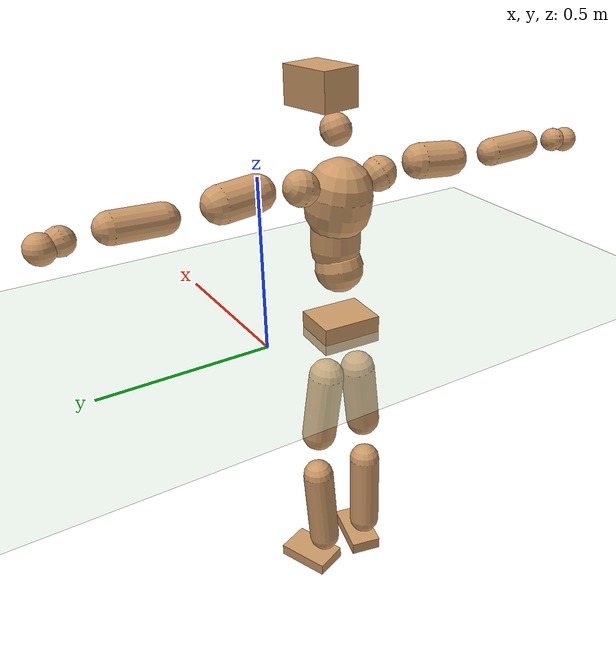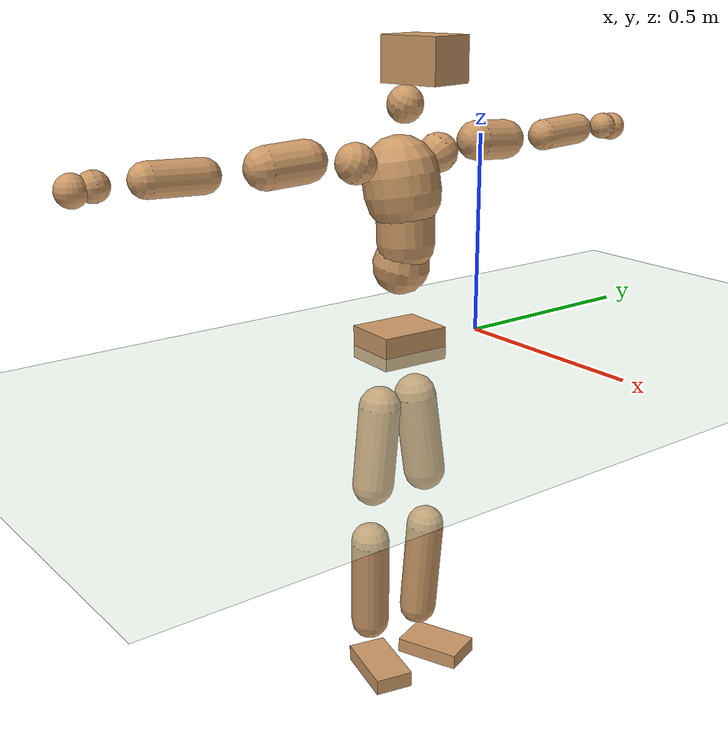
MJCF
<mujoco model="humanoid">
  <compiler coordinate="local" angle="radian"/>
  <default>
    <joint damping="0.0" armature="0.01" stiffness="0.0" limited="true"/>
    <geom conaffinity="1" condim="3" contype="7" margin="0.001" rgba="0.8 0.6 .4 1"/>
  </default>
  <asset>
    <texture type="skybox" builtin="gradient" rgb1=".4 .5 .6" rgb2="0 0 0" width="100" height="100"/>
    <texture builtin="flat" height="1278" mark="cross" markrgb="1 1 1" name="texgeom" random="0.01" rgb1="0.8 0.6 0.4" rgb2="0.8 0.6 0.4" type="cube" width="127"/>
    <texture builtin="checker" height="100" name="texplane" rgb1="0 0 0" rgb2="0.8 0.8 0.8" type="2d" width="100"/>
    <material name="MatPlane" reflectance="0.5" shininess="1" specular="1" texrepeat="60 60" texture="texplane"/>
    <material name="geom" texture="texgeom" texuniform="true"/>
  </asset>
  <worldbody>
    <light cutoff="100" diffuse="1 1 1" dir="-0 0 -1.3" directional="true" exponent="1" pos="0 0 1.3" specular=".1 .1 .1"/>
    <geom conaffinity="1" condim="3" name="floor" pos="0 0 0" rgba="0.8 0.9 0.8 1" size="100 100 .2" type="plane" material="MatPlane"/>
    <body name="Pelvis" pos="-0.0068 -0.2385 0.0152">
      <freejoint name="Pelvis"/>
      <geom type="box" contype="1" conaffinity="1" density="5359.374518" pos="-0.0111 0.0006 -0.0082" size="0.0707 0.0895 0.0411" quat="0.9997 0.0000 0.0000 -0.0257" name="Pelvis"/>
      <body name="L_Hip" pos="-0.0214 0.0473 -0.0782">
        <joint name="L_Hip_x" type="hinge" pos="0 0 0" axis="1 0 0" stiffness="1600" damping="160" armature="0.02" range="-180.0000 180.0000"/>
        <joint name="L_Hip_y" type="hinge" pos="0 0 0" axis="0 1 0" stiffness="1600" damping="160" armature="0.02" range="-180.0000 180.0000"/>
        <joint name="L_Hip_z" type="hinge" pos="0 0 0" axis="0 0 1" stiffness="1600" damping="160" armature="0.02" range="-180.0000 180.0000"/>
        <geom type="capsule" contype="1" conaffinity="1" density="2040.816327" size="0.054" fromto="0.0038 0.0097 -0.0834 0.0135 0.0343 -0.2960" name="L_Hip"/>
        <body name="L_Knee" pos="0.0173 0.044 -0.3794">
          <joint name="L_Knee_x" type="hinge" pos="0 0 0" axis="1 0 0" stiffness="1600" damping="160" armature="0.02" range="-180.0000 180.0000"/>
          <joint name="L_Knee_y" type="hinge" pos="0 0 0" axis="0 1 0" stiffness="1600" damping="160" armature="0.02" range="-180.0000 180.0000"/>
          <joint name="L_Knee_z" type="hinge" pos="0 0 0" axis="0 0 1" stiffness="1600" damping="160" armature="0.02" range="-180.0000 180.0000"/>
          <geom type="capsule" contype="1" conaffinity="1" density="1234.567901" size="0.0492" fromto="-0.0059 -0.0024 -0.0789 -0.0252 -0.0103 -0.3340" name="L_Knee"/>
          <body name="L_Ankle" pos="-0.0311 -0.0128 -0.4129">
            <joint name="L_Ankle_x" type="hinge" pos="0 0 0" axis="1 0 0" stiffness="1600" damping="160" armature="0.02" range="-180.0000 180.0000"/>
            <joint name="L_Ankle_y" type="hinge" pos="0 0 0" axis="0 1 0" stiffness="1600" damping="160" armature="0.02" range="-180.0000 180.0000"/>
            <joint name="L_Ankle_z" type="hinge" pos="0 0 0" axis="0 0 1" stiffness="1600" damping="160" armature="0.02" range="-180.0000 180.0000"/>
            <geom type="box" contype="1" conaffinity="1" density="999.999967" pos="0.0600 0.0236 -0.0302" size="0.0866 0.0537 0.0196" quat="0.9825 0.0000 0.0000 0.1864" name="L_Ankle"/>
            <body name="L_Toe" pos="0.1201 0.0473 -0.0605">
              <joint name="L_Toe_x" type="hinge" pos="0 0 0" axis="1 0 0" stiffness="1000" damping="100" armature="0.02" range="-180.0000 180.0000"/>
              <joint name="L_Toe_y" type="hinge" pos="0 0 0" axis="0 1 0" stiffness="1000" damping="100" armature="0.02" range="-180.0000 180.0000"/>
              <joint name="L_Toe_z" type="hinge" pos="0 0 0" axis="0 0 1" stiffness="1000" damping="100" armature="0.02" range="-180.0000 180.0000"/>
              <geom type="box" contype="1" conaffinity="1" density="7497872.16145" pos="0.0000 0.0000 0.0316" size="0.0011 0.0026 0.001" quat="0.9817 0.0000 0.0000 0.1906" name="L_Toe"/>
            </body>
          </body>
        </body>
      </body>
      <body name="R_Hip" pos="-0.0176 -0.0481 -0.0868">
        <joint name="R_Hip_x" type="hinge" pos="0 0 0" axis="1 0 0" stiffness="1600" damping="160" armature="0.02" range="-180.0000 180.0000"/>
        <joint name="R_Hip_y" type="hinge" pos="0 0 0" axis="0 1 0" stiffness="1600" damping="160" armature="0.02" range="-180.0000 180.0000"/>
        <joint name="R_Hip_z" type="hinge" pos="0 0 0" axis="0 0 1" stiffness="1600" damping="160" armature="0.02" range="-180.0000 180.0000"/>
        <geom type="capsule" contype="1" conaffinity="1" density="2040.816327" size="0.0532" fromto="0.0006 -0.0094 -0.0826 0.0021 -0.0329 -0.2889" name="R_Hip"/>
        <body name="R_Knee" pos="0.0027 -0.0423 -0.3715">
          <joint name="R_Knee_x" type="hinge" pos="0 0 0" axis="1 0 0" stiffness="1600" damping="160" armature="0.02" range="-180.0000 180.0000"/>
          <joint name="R_Knee_y" type="hinge" pos="0 0 0" axis="0 1 0" stiffness="1600" damping="160" armature="0.02" range="-180.0000 180.0000"/>
          <joint name="R_Knee_z" type="hinge" pos="0 0 0" axis="0 0 1" stiffness="1600" damping="160" armature="0.02" range="-180.0000 180.0000"/>
          <geom type="capsule" contype="1" conaffinity="1" density="1234.567901" size="0.05" fromto="-0.0058 0.0035 -0.0797 -0.0236 0.0142 -0.3244" name="R_Knee"/>
          <body name="R_Ankle" pos="-0.0294 0.0177 -0.4042">
            <joint name="R_Ankle_x" type="hinge" pos="0 0 0" axis="1 0 0" stiffness="1600" damping="160" armature="0.02" range="-180.0000 180.0000"/>
            <joint name="R_Ankle_y" type="hinge" pos="0 0 0" axis="0 1 0" stiffness="1600" damping="160" armature="0.02" range="-180.0000 180.0000"/>
            <joint name="R_Ankle_z" type="hinge" pos="0 0 0" axis="0 0 1" stiffness="1600" damping="160" armature="0.02" range="-180.0000 180.0000"/>
            <geom type="box" contype="1" conaffinity="1" density="999.99999" pos="0.0654 -0.0154 -0.0302" size="0.0921 0.0494 0.0205" quat="0.9933 0.0000 0.0000 -0.1155" name="R_Ankle"/>
            <body name="R_Toe" pos="0.1307 -0.0308 -0.0604">
              <joint name="R_Toe_x" type="hinge" pos="0 0 0" axis="1 0 0" stiffness="1000" damping="100" armature="0.02" range="-180.0000 180.0000"/>
              <joint name="R_Toe_y" type="hinge" pos="0 0 0" axis="0 1 0" stiffness="1000" damping="100" armature="0.02" range="-180.0000 180.0000"/>
              <joint name="R_Toe_z" type="hinge" pos="0 0 0" axis="0 0 1" stiffness="1000" damping="100" armature="0.02" range="-180.0000 180.0000"/>
              <geom type="box" contype="1" conaffinity="1" density="8690639.175148" pos="0.0000 0.0000 0.0324" size="0.0009 0.0024 0.0011" quat="0.9943 0.0000 0.0000 -0.1067" name="R_Toe"/>
            </body>
          </body>
        </body>
      </body>
      <body name="Torso" pos="-0.0279 0.0043 0.1161">
        <joint name="Torso_x" type="hinge" pos="0 0 0" axis="1 0 0" stiffness="2000" damping="200" armature="0.02" range="-180.0000 180.0000"/>
        <joint name="Torso_y" type="hinge" pos="0 0 0" axis="0 1 0" stiffness="2000" damping="200" armature="0.02" range="-180.0000 180.0000"/>
        <joint name="Torso_z" type="hinge" pos="0 0 0" axis="0 0 1" stiffness="2000" damping="200" armature="0.02" range="-180.0000 180.0000"/>
        <geom type="capsule" contype="1" conaffinity="1" density="2040.816327" size="0.0705" fromto="0.0134 0.0030 0.0694 0.0138 0.0031 0.0714" name="Torso"/>
        <body name="Spine" pos="0.0272 0.0061 0.1408">
          <joint name="Spine_x" type="hinge" pos="0 0 0" axis="1 0 0" stiffness="2000" damping="200" armature="0.02" range="-180.0000 180.0000"/>
          <joint name="Spine_y" type="hinge" pos="0 0 0" axis="0 1 0" stiffness="2000" damping="200" armature="0.02" range="-180.0000 180.0000"/>
          <joint name="Spine_z" type="hinge" pos="0 0 0" axis="0 0 1" stiffness="2000" damping="200" armature="0.02" range="-180.0000 180.0000"/>
          <geom type="capsule" contype="1" conaffinity="1" density="2040.816327" size="0.0709" fromto="-0.0002 -0.0009 0.0708 0.0000 0.0002 -0.0135" name="Spine"/>
          <body name="Chest" pos="-0.0001 -0.0007 0.0573">
            <joint name="Chest_x" type="hinge" pos="0 0 0" axis="1 0 0" stiffness="2000" damping="200" armature="0.02" range="-180.0000 180.0000"/>
            <joint name="Chest_y" type="hinge" pos="0 0 0" axis="0 1 0" stiffness="2000" damping="200" armature="0.02" range="-180.0000 180.0000"/>
            <joint name="Chest_z" type="hinge" pos="0 0 0" axis="0 0 1" stiffness="2000" damping="200" armature="0.02" range="-180.0000 180.0000"/>
            <geom type="capsule" contype="1" conaffinity="1" density="2040.816327" size="0.0938" fromto="-0.0134 -0.0054 0.0926 -0.0070 -0.0028 0.0480" name="Chest"/>
            <body name="Neck" pos="-0.0179 -0.0141 0.2065">
              <joint name="Neck_x" type="hinge" pos="0 0 0" axis="1 0 0" stiffness="1000" damping="100" armature="0.02" range="-180.0000 180.0000"/>
              <joint name="Neck_y" type="hinge" pos="0 0 0" axis="0 1 0" stiffness="1000" damping="100" armature="0.02" range="-180.0000 180.0000"/>
              <joint name="Neck_z" type="hinge" pos="0 0 0" axis="0 0 1" stiffness="1000" damping="100" armature="0.02" range="-180.0000 180.0000"/>
              <geom type="capsule" contype="1" conaffinity="1" density="1000" size="0.0435" fromto="0.0269 0.0047 0.0502 0.0279 0.0049 0.0520" name="Neck"/>
              <body name="Head" pos="0.0548 0.0096 0.1021">
                <joint name="Head_x" type="hinge" pos="0 0 0" axis="1 0 0" stiffness="1000" damping="100" armature="0.02" range="-180.0000 180.0000"/>
                <joint name="Head_y" type="hinge" pos="0 0 0" axis="0 1 0" stiffness="1000" damping="100" armature="0.02" range="-180.0000 180.0000"/>
                <joint name="Head_z" type="hinge" pos="0 0 0" axis="0 0 1" stiffness="1000" damping="100" armature="0.02" range="-180.0000 180.0000"/>
                <geom type="box" contype="1" conaffinity="1" density="2249.999976" pos="0.0284 0.0058 0.0521" size="0.0788 0.0606 0.0528" quat="0.9949 0.0000 0.0000 0.1008" name="Head"/>
              </body>
            </body>
            <body name="L_Thorax" pos="-0.0196 0.0641 0.1088">
              <joint name="L_Thorax_x" type="hinge" pos="0 0 0" axis="1 0 0" stiffness="1000" damping="100" armature="0.02" range="-180.0000 180.0000"/>
              <joint name="L_Thorax_y" type="hinge" pos="0 0 0" axis="0 1 0" stiffness="1000" damping="100" armature="0.02" range="-180.0000 180.0000"/>
              <joint name="L_Thorax_z" type="hinge" pos="0 0 0" axis="0 0 1" stiffness="1000" damping="100" armature="0.02" range="-180.0000 180.0000"/>
              <geom type="capsule" contype="1" conaffinity="1" density="1000" size="0.0491" fromto="-0.0071 0.0564 0.0213 -0.0073 0.0582 0.0220" name="L_Thorax"/>
              <body name="L_Shoulder" pos="-0.0144 0.1146 0.0433">
                <joint name="L_Shoulder_x" type="hinge" pos="0 0 0" axis="1 0 0" stiffness="1000" damping="100" armature="0.02" range="-720.0000 720.0000"/>
                <joint name="L_Shoulder_y" type="hinge" pos="0 0 0" axis="0 1 0" stiffness="1000" damping="100" armature="0.02" range="-720.0000 720.0000"/>
                <joint name="L_Shoulder_z" type="hinge" pos="0 0 0" axis="0 0 1" stiffness="1000" damping="100" armature="0.02" range="-720.0000 720.0000"/>
                <geom type="capsule" contype="1" conaffinity="1" density="1000" size="0.0497" fromto="-0.0061 0.0793 -0.0052 -0.0141 0.1819 -0.0120" name="L_Shoulder"/>
                <body name="L_Elbow" pos="-0.0202 0.2612 -0.0172">
                  <joint name="L_Elbow_x" type="hinge" pos="0 0 0" axis="1 0 0" stiffness="1000" damping="100" armature="0.02" range="-720.0000 720.0000"/>
                  <joint name="L_Elbow_y" type="hinge" pos="0 0 0" axis="0 1 0" stiffness="1000" damping="100" armature="0.02" range="-720.0000 720.0000"/>
                  <joint name="L_Elbow_z" type="hinge" pos="0 0 0" axis="0 0 1" stiffness="1000" damping="100" armature="0.02" range="-720.0000 720.0000"/>
                  <geom type="capsule" contype="1" conaffinity="1" density="1000" size="0.0398" fromto="-0.0024 0.0697 0.0030 -0.0068 0.1983 0.0085" name="L_Elbow"/>
                  <body name="L_Wrist" pos="-0.0092 0.2681 0.0115">
                    <joint name="L_Wrist_x" type="hinge" pos="0 0 0" axis="1 0 0" stiffness="600" damping="60" armature="0.02" range="-180.0000 180.0000"/>
                    <joint name="L_Wrist_y" type="hinge" pos="0 0 0" axis="0 1 0" stiffness="600" damping="60" armature="0.02" range="-180.0000 180.0000"/>
                    <joint name="L_Wrist_z" type="hinge" pos="0 0 0" axis="0 0 1" stiffness="600" damping="60" armature="0.02" range="-180.0000 180.0000"/>
                    <geom type="capsule" contype="1" conaffinity="1" density="1000" size="0.0348" fromto="-0.0080 0.0439 -0.0053 -0.0083 0.0458 -0.0055" name="L_Wrist"/>
                    <body name="L_Hand" pos="-0.0163 0.0897 -0.0108">
                      <joint name="L_Hand_x" type="hinge" pos="0 0 0" axis="1 0 0" stiffness="600" damping="60" armature="0.02" range="-180.0000 180.0000"/>
                      <joint name="L_Hand_y" type="hinge" pos="0 0 0" axis="0 1 0" stiffness="600" damping="60" armature="0.02" range="-180.0000 180.0000"/>
                      <joint name="L_Hand_z" type="hinge" pos="0 0 0" axis="0 0 1" stiffness="600" damping="60" armature="0.02" range="-180.0000 180.0000"/>
                      <geom type="sphere" contype="1" conaffinity="1" density="1000" size="0.0367" pos="0.0000 0.0000 0.0000" name="L_Hand"/>
                    </body>
                  </body>
                </body>
              </body>
            </body>
            <body name="R_Thorax" pos="-0.0237 -0.0746 0.1066">
              <joint name="R_Thorax_x" type="hinge" pos="0 0 0" axis="1 0 0" stiffness="1000" damping="100" armature="0.02" range="-180.0000 180.0000"/>
              <joint name="R_Thorax_y" type="hinge" pos="0 0 0" axis="0 1 0" stiffness="1000" damping="100" armature="0.02" range="-180.0000 180.0000"/>
              <joint name="R_Thorax_z" type="hinge" pos="0 0 0" axis="0 0 1" stiffness="1000" damping="100" armature="0.02" range="-180.0000 180.0000"/>
              <geom type="capsule" contype="1" conaffinity="1" density="1000" size="0.049" fromto="-0.0022 -0.0507 0.0209 -0.0023 -0.0525 0.0217" name="R_Thorax"/>
              <body name="R_Shoulder" pos="-0.0045 -0.1032 0.0426">
                <joint name="R_Shoulder_x" type="hinge" pos="0 0 0" axis="1 0 0" stiffness="1000" damping="100" armature="0.02" range="-720.0000 720.0000"/>
                <joint name="R_Shoulder_y" type="hinge" pos="0 0 0" axis="0 1 0" stiffness="1000" damping="100" armature="0.02" range="-720.0000 720.0000"/>
                <joint name="R_Shoulder_z" type="hinge" pos="0 0 0" axis="0 0 1" stiffness="1000" damping="100" armature="0.02" range="-720.0000 720.0000"/>
                <geom type="capsule" contype="1" conaffinity="1" density="1000" size="0.0502" fromto="-0.0084 -0.0796 -0.0051 -0.0189 -0.1790 -0.0116" name="R_Shoulder"/>
                <body name="R_Elbow" pos="-0.0273 -0.2586 -0.0167">
                  <joint name="R_Elbow_x" type="hinge" pos="0 0 0" axis="1 0 0" stiffness="1000" damping="100" armature="0.02" range="-720.0000 720.0000"/>
                  <joint name="R_Elbow_y" type="hinge" pos="0 0 0" axis="0 1 0" stiffness="1000" damping="100" armature="0.02" range="-720.0000 720.0000"/>
                  <joint name="R_Elbow_z" type="hinge" pos="0 0 0" axis="0 0 1" stiffness="1000" damping="100" armature="0.02" range="-720.0000 720.0000"/>
                  <geom type="capsule" contype="1" conaffinity="1" density="1000" size="0.04" fromto="-0.0014 -0.0700 0.0025 -0.0041 -0.2007 0.0070" name="R_Elbow"/>
                  <body name="R_Wrist" pos="-0.0055 -0.2707 0.0095">
                    <joint name="R_Wrist_x" type="hinge" pos="0 0 0" axis="1 0 0" stiffness="600" damping="60" armature="0.02" range="-180.0000 180.0000"/>
                    <joint name="R_Wrist_y" type="hinge" pos="0 0 0" axis="0 1 0" stiffness="600" damping="60" armature="0.02" range="-180.0000 180.0000"/>
                    <joint name="R_Wrist_z" type="hinge" pos="0 0 0" axis="0 0 1" stiffness="600" damping="60" armature="0.02" range="-180.0000 180.0000"/>
                    <geom type="capsule" contype="1" conaffinity="1" density="1000" size="0.0344" fromto="-0.0052 -0.0435 -0.0042 -0.0054 -0.0455 -0.0044" name="R_Wrist"/>
                    <body name="R_Hand" pos="-0.0106 -0.089 -0.0086">
                      <joint name="R_Hand_x" type="hinge" pos="0 0 0" axis="1 0 0" stiffness="600" damping="60" armature="0.02" range="-180.0000 180.0000"/>
                      <joint name="R_Hand_y" type="hinge" pos="0 0 0" axis="0 1 0" stiffness="600" damping="60" armature="0.02" range="-180.0000 180.0000"/>
                      <joint name="R_Hand_z" type="hinge" pos="0 0 0" axis="0 0 1" stiffness="600" damping="60" armature="0.02" range="-180.0000 180.0000"/>
                      <geom type="sphere" contype="1" conaffinity="1" density="1000" size="0.0361" pos="0.0000 0.0000 0.0000" name="R_Hand"/>
                    </body>
                  </body>
                </body>
              </body>
            </body>
          </body>
        </body>
      </body>
    </body>
  </worldbody>
  <actuator>
    <motor name="L_Hip_x" joint="L_Hip_x" gear="500"/>
    <motor name="L_Hip_y" joint="L_Hip_y" gear="500"/>
    <motor name="L_Hip_z" joint="L_Hip_z" gear="500"/>
    <motor name="L_Knee_x" joint="L_Knee_x" gear="500"/>
    <motor name="L_Knee_y" joint="L_Knee_y" gear="500"/>
    <motor name="L_Knee_z" joint="L_Knee_z" gear="500"/>
    <motor name="L_Ankle_x" joint="L_Ankle_x" gear="500"/>
    <motor name="L_Ankle_y" joint="L_Ankle_y" gear="500"/>
    <motor name="L_Ankle_z" joint="L_Ankle_z" gear="500"/>
    <motor name="L_Toe_x" joint="L_Toe_x" gear="500"/>
    <motor name="L_Toe_y" joint="L_Toe_y" gear="500"/>
    <motor name="L_Toe_z" joint="L_Toe_z" gear="500"/>
    <motor name="R_Hip_x" joint="R_Hip_x" gear="500"/>
    <motor name="R_Hip_y" joint="R_Hip_y" gear="500"/>
    <motor name="R_Hip_z" joint="R_Hip_z" gear="500"/>
    <motor name="R_Knee_x" joint="R_Knee_x" gear="500"/>
    <motor name="R_Knee_y" joint="R_Knee_y" gear="500"/>
    <motor name="R_Knee_z" joint="R_Knee_z" gear="500"/>
    <motor name="R_Ankle_x" joint="R_Ankle_x" gear="500"/>
    <motor name="R_Ankle_y" joint="R_Ankle_y" gear="500"/>
    <motor name="R_Ankle_z" joint="R_Ankle_z" gear="500"/>
    <motor name="R_Toe_x" joint="R_Toe_x" gear="500"/>
    <motor name="R_Toe_y" joint="R_Toe_y" gear="500"/>
    <motor name="R_Toe_z" joint="R_Toe_z" gear="500"/>
    <motor name="Torso_x" joint="Torso_x" gear="500"/>
    <motor name="Torso_y" joint="Torso_y" gear="500"/>
    <motor name="Torso_z" joint="Torso_z" gear="500"/>
    <motor name="Spine_x" joint="Spine_x" gear="500"/>
    <motor name="Spine_y" joint="Spine_y" gear="500"/>
    <motor name="Spine_z" joint="Spine_z" gear="500"/>
    <motor name="Chest_x" joint="Chest_x" gear="500"/>
    <motor name="Chest_y" joint="Chest_y" gear="500"/>
    <motor name="Chest_z" joint="Chest_z" gear="500"/>
    <motor name="Neck_x" joint="Neck_x" gear="500"/>
    <motor name="Neck_y" joint="Neck_y" gear="500"/>
    <motor name="Neck_z" joint="Neck_z" gear="500"/>
    <motor name="Head_x" joint="Head_x" gear="500"/>
    <motor name="Head_y" joint="Head_y" gear="500"/>
    <motor name="Head_z" joint="Head_z" gear="500"/>
    <motor name="L_Thorax_x" joint="L_Thorax_x" gear="500"/>
    <motor name="L_Thorax_y" joint="L_Thorax_y" gear="500"/>
    <motor name="L_Thorax_z" joint="L_Thorax_z" gear="500"/>
    <motor name="L_Shoulder_x" joint="L_Shoulder_x" gear="500"/>
    <motor name="L_Shoulder_y" joint="L_Shoulder_y" gear="500"/>
    <motor name="L_Shoulder_z" joint="L_Shoulder_z" gear="500"/>
    <motor name="L_Elbow_x" joint="L_Elbow_x" gear="500"/>
    <motor name="L_Elbow_y" joint="L_Elbow_y" gear="500"/>
    <motor name="L_Elbow_z" joint="L_Elbow_z" gear="500"/>
    <motor name="L_Wrist_x" joint="L_Wrist_x" gear="500"/>
    <motor name="L_Wrist_y" joint="L_Wrist_y" gear="500"/>
    <motor name="L_Wrist_z" joint="L_Wrist_z" gear="500"/>
    <motor name="L_Hand_x" joint="L_Hand_x" gear="500"/>
    <motor name="L_Hand_y" joint="L_Hand_y" gear="500"/>
    <motor name="L_Hand_z" joint="L_Hand_z" gear="500"/>
    <motor name="R_Thorax_x" joint="R_Thorax_x" gear="500"/>
    <motor name="R_Thorax_y" joint="R_Thorax_y" gear="500"/>
    <motor name="R_Thorax_z" joint="R_Thorax_z" gear="500"/>
    <motor name="R_Shoulder_x" joint="R_Shoulder_x" gear="500"/>
    <motor name="R_Shoulder_y" joint="R_Shoulder_y" gear="500"/>
    <motor name="R_Shoulder_z" joint="R_Shoulder_z" gear="500"/>
    <motor name="R_Elbow_x" joint="R_Elbow_x" gear="500"/>
    <motor name="R_Elbow_y" joint="R_Elbow_y" gear="500"/>
    <motor name="R_Elbow_z" joint="R_Elbow_z" gear="500"/>
    <motor name="R_Wrist_x" joint="R_Wrist_x" gear="500"/>
    <motor name="R_Wrist_y" joint="R_Wrist_y" gear="500"/>
    <motor name="R_Wrist_z" joint="R_Wrist_z" gear="500"/>
    <motor name="R_Hand_x" joint="R_Hand_x" gear="500"/>
    <motor name="R_Hand_y" joint="R_Hand_y" gear="500"/>
    <motor name="R_Hand_z" joint="R_Hand_z" gear="500"/>
  </actuator>
  <contact>
    <exclude body1="Torso" body2="Chest"/>
    <exclude body1="Head" body2="Chest"/>
    <exclude body1="R_Knee" body2="R_Toe"/>
    <exclude body1="R_Knee" body2="L_Ankle"/>
    <exclude body1="R_Knee" body2="L_Toe"/>
    <exclude body1="L_Knee" body2="L_Toe"/>
    <exclude body1="L_Knee" body2="R_Ankle"/>
    <exclude body1="L_Knee" body2="R_Toe"/>
    <exclude body1="L_Shoulder" body2="Chest"/>
    <exclude body1="R_Shoulder" body2="Chest"/>
  </contact>
  <sensor/>
  <size njmax="700" nconmax="700"/>
</mujoco>
